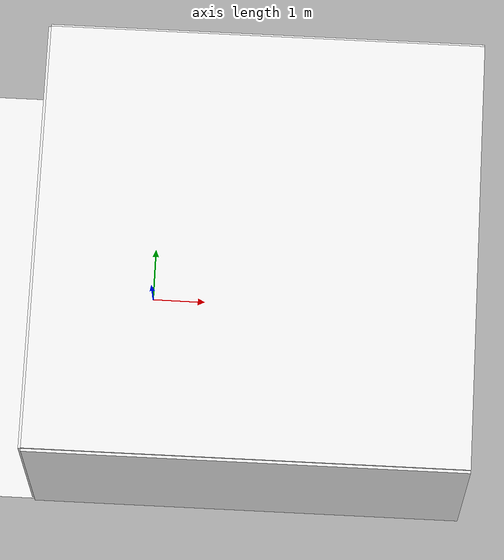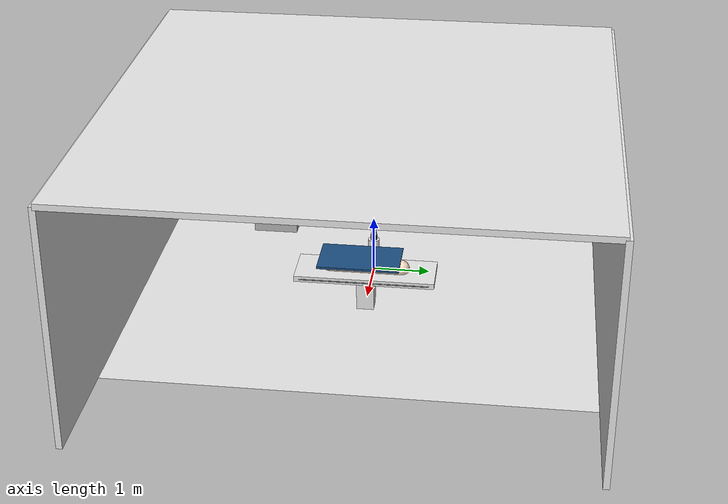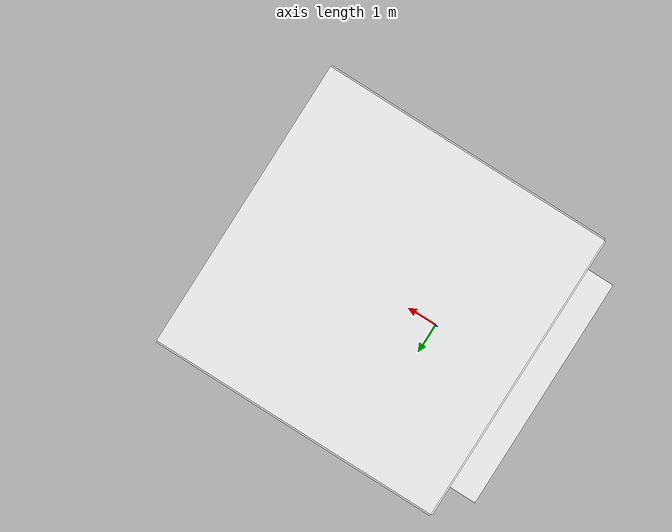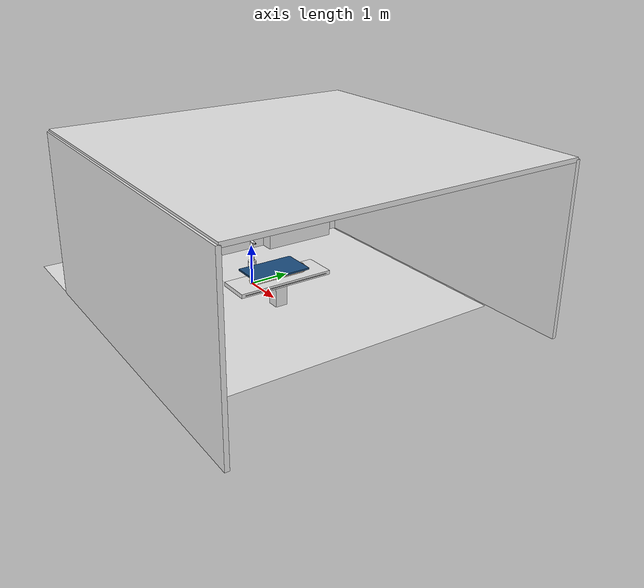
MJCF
<mujoco model="piper_surgery_room">
  <statistic center="1.0 0 1.0" extent="5.0"/>

  <option timestep="0.001" integrator="implicit" gravity="0 0 -9.81">
    <flag energy="enable" contact="enable"/>
  </option>

  <visual>
    <headlight diffuse="0.4 0.4 0.4" ambient="0.2 0.2 0.2" specular="0.1 0.1 0.1"/>
    <rgba haze="0.15 0.25 0.35 1"/>
    <global azimuth="140" elevation="-25"/>
    <quality shadowsize="1024"/>
  </visual>

  <default>
    <joint armature="1.0" damping="200" limited="true" frictionloss="5.0"/>
    <geom contype="1" conaffinity="1" condim="3" rgba="0.9 0.9 0.9 1" type="capsule" solref="0.01 1" solimp="0.99 0.99 0.001"/>
    <position kp="500" kv="100" ctrlrange="-180 180" forcerange="-200 200"/>
  </default>

  <asset>
    <texture type="skybox" builtin="gradient" rgb1="0.6 0.8 1.0" rgb2="0.1 0.1 0.2" width="512" height="3072"/>
    <texture type="2d" name="groundplane" builtin="checker" mark="edge" rgb1="0.8 0.8 0.8" rgb2="0.7 0.7 0.7"
      markrgb="0.9 0.9 0.9" width="300" height="300"/>
    <material name="floor_mat" texture="groundplane" texuniform="true" texrepeat="2 2" reflectance="0.6" shininess="0.8"/>
    <material name="wall_mat" rgba="0.9 0.95 1.0 1" reflectance="0.1"/>
    <material name="cabinet_mat" rgba="0.2 0.4 0.5 1" reflectance="0.3"/>
    <material name="table_metal" rgba="0.7 0.7 0.7 1" reflectance="0.8"/>
    <material name="surgical_blue" rgba="0.2 0.5 0.8 1"/>
    <material name="chair_leather" rgba="0.1 0.1 0.1 1"/>
  </asset>

  <worldbody>
    <!-- Lighting -->
    <light pos="0.6 0 2.5" dir="0 0 -1" diffuse="0.8 0.8 0.8" specular="0.3 0.3 0.3" directional="true"/>

    <!-- Room -->
    <geom name="floor" size="4 4 0.1" pos="0 0 -0.05" type="plane" material="floor_mat"/>
    <geom name="wall_back" type="box" size="0.05 4 2" pos="-2 0 2" material="wall_mat"/>
    <geom name="wall_left" type="box" size="4 0.05 2" pos="2 4 2" material="wall_mat"/>
    <geom name="wall_right" type="box" size="4 0.05 2" pos="2 -4 2" material="wall_mat"/>
    <geom name="ceiling" type="box" size="4 4 0.05" pos="2 0 4" material="wall_mat"/>

    <!-- Cabinets and Equipment -->
    <body name="cabinet_1" pos="-1.8 2.5 1">
      <geom type="box" size="0.2 1.0 1.0" material="cabinet_mat"/>
      <geom type="box" size="0.21 0.9 0.1" pos="0 0 0.5" rgba="0.8 0.8 0.8 1"/>
      <geom type="box" size="0.21 0.9 0.1" pos="0 0 -0.5" rgba="0.8 0.8 0.8 1"/>
    </body>

    <body name="instrument_cart" pos="-1.5 -2.0 0.4">
      <geom type="box" size="0.3 0.4 0.4" rgba="0.7 0.7 0.7 1"/>
      <geom type="cylinder" size="0.05 0.02" pos="0.2 0.3 -0.4" rgba="0.2 0.2 0.2 1"/>
      <geom type="cylinder" size="0.05 0.02" pos="-0.2 0.3 -0.4" rgba="0.2 0.2 0.2 1"/>
      <geom type="cylinder" size="0.05 0.02" pos="0.2 -0.3 -0.4" rgba="0.2 0.2 0.2 1"/>
      <geom type="cylinder" size="0.05 0.02" pos="-0.2 -0.3 -0.4" rgba="0.2 0.2 0.2 1"/>
    </body>

    <!-- Monitor Arm -->
    <body name="monitor_base" pos="2.5 2.5 3.5">
      <geom type="cylinder" size="0.05 0.5" pos="0 0 -0.5" material="table_metal"/>
      <body name="monitor_arm1" pos="0 0 -0.5">
        <joint type="hinge" axis="0 0 1" range="-90 90"/>
        <geom type="capsule" size="0.03" fromto="0 0 0 0 -1.0 0" material="table_metal"/>
        <body name="monitor_screen" pos="0 -1.0 0">
          <joint type="hinge" axis="0 1 0" range="-45 45"/>
          <geom type="box" size="0.4 0.02 0.3" rgba="0.1 0.1 0.1 1"/>
          <geom name="screen_display" type="box" size="0.38 0.001 0.28" pos="0 -0.021 0" rgba="0 0.8 1 1"/>
        </body>
      </body>
    </body>

    <!-- Operating Table -->
    <body name="operating_table" pos="1.2 0 0.6">
      <geom name="table_base" type="box" size="0.15 0.15 0.5" pos="0 0 -0.5" material="table_metal"/>
      <geom name="table_top" type="box" size="0.4 1.2 0.05" material="surgical_blue"/>
      <geom name="rail_left" type="capsule" size="0.01 1.1" pos="0.41 0 0" quat="0.707 0.707 0 0" material="table_metal"/>
      <geom name="rail_right" type="capsule" size="0.01 1.1" pos="-0.41 0 0" quat="0.707 0.707 0 0" material="table_metal"/>
      <body name="patient" pos="0 0 0.1">
        <geom name="patient_body" type="capsule" size="0.15 0.6" quat="0.707 0.707 0 0" rgba="0.95 0.85 0.75 1"/>
        <geom name="surgical_drape" type="box" size="0.42 0.7 0.02" pos="0 -0.1 0.15" rgba="0.1 0.3 0.5 0.9"/>
      </body>
    </body>

    <!-- Robot Base Stand -->
    <body name="robot_stand" pos="0 0 0.6">
      <geom name="stand_geom" type="cylinder" size="0.1 0.6" pos="0 0 -0.6" material="table_metal" contype="0" conaffinity="0"/>

      <!-- Piper Arm - Forced initial pose using 'ref' and 'pos' -->
      <body name="piper_base" pos="0 0 0.01">
        <geom name="base_link" type="cylinder" size="0.06 0.05" pos="0 0 0.025" rgba="0.2 0.2 0.2 1" contype="0" conaffinity="0"/>
        <body name="link1" pos="0 0 0.05">
          <joint name="joint1" axis="0 0 1" range="-180 180" damping="100"/>
          <geom name="l1_cap" type="cylinder" size="0.05 0.04" pos="0 0 0.04" rgba="0.8 0.8 0.8 1" contype="0" conaffinity="0"/>
          <body name="link2" pos="0 0 0.08">
            <!-- 45 degree bend -->
            <joint name="joint2" axis="0 1 0" range="-90 90" ref="45" damping="200"/>
            <geom name="l2_cap" size="0.04" fromto="0 0 0 0 0 0.2" rgba="0.9 0.9 0.9 1" contype="0" conaffinity="0"/>
            <body name="link3" pos="0 0 0.2">
              <!-- 90 degree bend -->
              <joint name="joint3" axis="0 1 0" range="-150 150" ref="90" damping="150"/>
              <geom name="l3_cap" size="0.035" fromto="0 0 0 0 0 0.18" rgba="0.8 0.8 0.8 1" contype="0" conaffinity="0"/>
              <body name="link4" pos="0 0 0.18">
                <joint name="joint4" axis="1 0 0" range="-180 180" damping="100"/>
                <geom name="l4_cap" size="0.03" fromto="0 0 0 0.1 0 0" rgba="0.9 0.9 0.9 1" contype="0" conaffinity="0"/>
                <body name="link5" pos="0.1 0 0">
                  <joint name="joint5" axis="0 1 0" range="-120 120" ref="45" damping="100"/>
                  <geom name="l5_cap" size="0.025" fromto="0 0 0 0.05 0 0" rgba="0.8 0.8 0.8 1" contype="0" conaffinity="0"/>
                  <body name="link6" pos="0.05 0 0">
                    <joint name="joint6" axis="1 0 0" range="-180 180" damping="50"/>
                    <geom name="l6_cap" size="0.02" type="sphere" rgba="0.2 0.2 0.2 1" contype="0" conaffinity="0"/>
                    <!-- Gripper with collision disabled to avoid jitter -->
                    <body name="left_finger" pos="0.02 0.01 0">
                      <joint name="finger_joint" axis="0 0 1" range="0 0.04" type="slide" damping="50"/>
                      <geom name="f1" type="box" size="0.02 0.005 0.01" pos="0.02 0 0" rgba="0.3 0.3 0.3 1" contype="0" conaffinity="0"/>
                    </body>
                    <body name="right_finger" pos="0.02 -0.01 0">
                      <joint name="finger_joint_r" axis="0 0 -1" range="0 0.04" type="slide" damping="50"/>
                      <geom name="f2" type="box" size="0.02 0.005 0.01" pos="0.02 0 0" rgba="0.3 0.3 0.3 1" contype="0" conaffinity="0"/>
                    </body>
                  </body>
                </body>
              </body>
            </body>
          </body>
        </body>
      </body>
    </body>

    <!-- Lights -->
    <body name="pendant_light_1" pos="0.8 0.6 2.2">
      <geom type="cylinder" size="0.3 0.03" rgba="0.9 0.9 1 1"/>
      <light pos="0 0 -0.1" dir="0 0 -1" diffuse="1 1 1" specular="1 1 1" exponent="20" cutoff="45"/>
    </body>
    <body name="pendant_light_2" pos="0.8 -0.6 2.2">
      <geom type="cylinder" size="0.3 0.03" rgba="0.9 0.9 1 1"/>
      <light pos="0 0 -0.1" dir="0 0 -1" diffuse="1 1 1" specular="1 1 1" exponent="20" cutoff="45"/>
    </body>
    <body name="ambient_light" pos="2 0 3.5">
      <light pos="0 0 0" dir="0 0 -1" diffuse="0.3 0.3 0.3" specular="0 0 0" directional="true"/>
    </body>
  </worldbody>

  <actuator>
    <position name="a1" joint="joint1" kp="500" kv="100"/>
    <position name="a2" joint="joint2" kp="800" kv="200"/>
    <position name="a3" joint="joint3" kp="600" kv="150"/>
    <position name="a4" joint="joint4" kp="300" kv="80"/>
    <position name="a5" joint="joint5" kp="300" kv="80"/>
    <position name="a6" joint="joint6" kp="100" kv="30"/>
    <position name="a_finger" joint="finger_joint" kp="500" kv="50"/>
    <position name="a_finger_r" joint="finger_joint_r" kp="500" kv="50"/>
  </actuator>

  <contact>
    <!-- Disable ALL robot self-collisions to ensure absolute stability -->
    <exclude body1="piper_base" body2="link1"/>
    <exclude body1="piper_base" body2="link2"/>
    <exclude body1="link1" body2="link2"/>
    <exclude body1="link2" body2="link3"/>
    <exclude body1="link3" body2="link4"/>
    <exclude body1="link4" body2="link5"/>
    <exclude body1="link5" body2="link6"/>
    <exclude body1="link6" body2="left_finger"/>
    <exclude body1="link6" body2="right_finger"/>
  </contact>
</mujoco>
